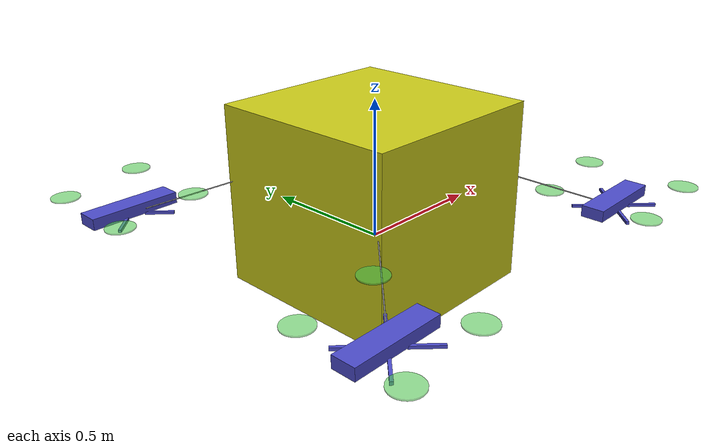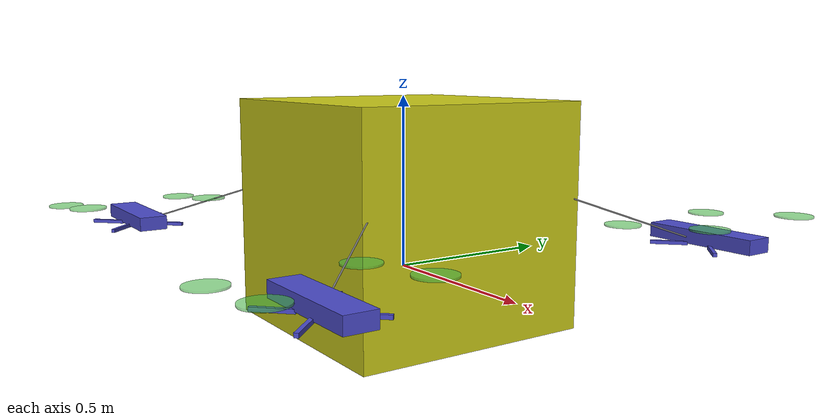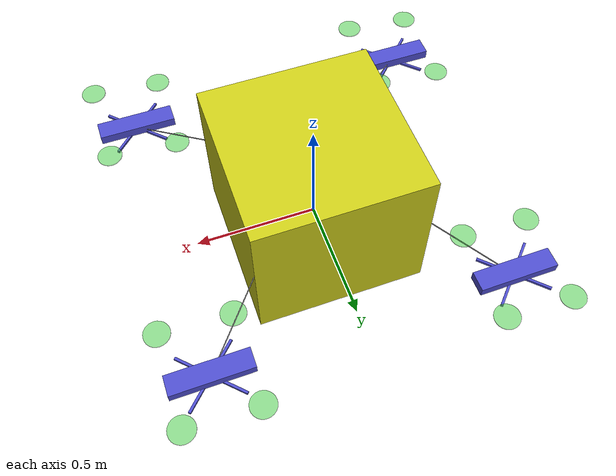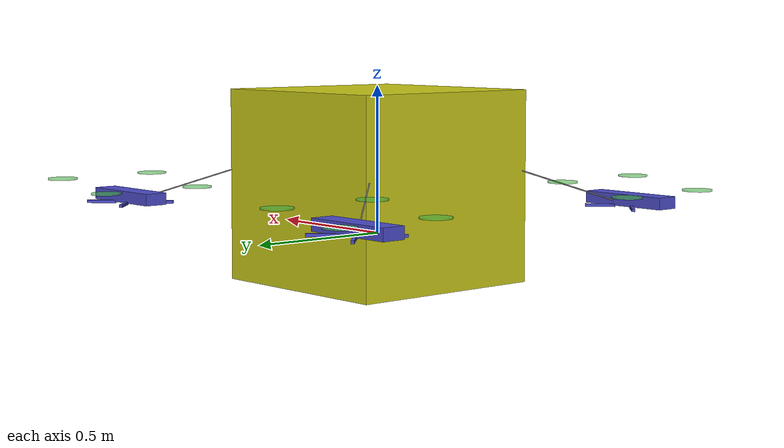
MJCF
<mujoco model="Skydio X2">
  <compiler autolimits="true" assetdir="assets"/>
  <option timestep="0.01" density="1.225" viscosity="1.8e-5"/>

  <default>
    <default class="x2">
      <geom mass="0"/>
      <motor ctrlrange="0 13"/>
      <mesh scale="0.01 0.01 0.01"/>
      <default class="visual">
        <geom group="2" type="mesh" contype="0" conaffinity="0"/>
      </default>
      <default class="collision">
        <geom group="3" type="box"/>
        <default class="rotor">
          <geom type="ellipsoid" size=".13 .13 .01"/>
        </default>
      </default>
      <site group="5"/>
    </default>
  </default>

  <worldbody>

    <body name="x2_0" pos="0.6 0.6 0.1" childclass="x2">
      <freejoint/>
      <camera name="track_0" pos="-1 0 .5" xyaxes="0 -1 0 1 0 2" mode="trackcom"/>
      <site name="imu_0" pos="0 0 .02"/>
      <geom name="core_geom_0" type="box" pos="0 0 0.02" quat="1 0 0 0" size=".16 .04 .02" rgba=".3 .3 .8 1" mass=".325"/>
      <geom name="arm_front_left_0" type="box" pos=".07 .07 0" size=".05 .005 .005" quat=".924 0 0 .383" rgba=".3 .3 .8 1"/>
      <geom name="arm_front_right_0" type="box" pos=".07 -.07 0" size=".05 .005 .005" quat=".383 0 0 .924" rgba=".3 .3 .8 1"/>
      <geom name="arm_back_right_0" type="box" pos="-.07 -.07 0" size=".05 .005 .005" quat="-.383 0 0 .924" rgba=".3 .3 .8 1"/>
      <geom name="arm_back_left_0" type="box" pos="-.07 .07 0" size=".05 .005 .005" quat=".924 0 0 -.383" rgba=".3 .3 .8 1"/>
      <site name="thrust1_0" type="cylinder" pos="-.14 -.18 .05"/>
      <site name="thrust2_0" type="cylinder" pos="-.14 .18 .05"/>
      <site name="thrust3_0" type="cylinder" pos=".14 .18 .08"/>
      <site name="thrust4_0" type="cylinder" pos=".14 -.18 .08"/>
      <geom name="thruster_front_left_0" type="cylinder" pos="-.14 -.18 .05" size=".05 .0025" quat="1 0 0 0" rgba=".3 .8 .3 0.6" mass=".25"/>
      <geom name="thruster_front_right_0" type="cylinder" pos="-.14 .18 .05" size=".05 .0025" quat="1 0 0 0" rgba=".3 .8 .3 0.6" mass=".25"/>
      <geom name="thruster_back_right_0" type="cylinder" pos=".14 .18 .08" size=".05 .0025" quat="1 0 0 0" rgba=".3 .8 .3 0.6" mass=".25"/>
      <geom name="thruster_back_left_0" type="cylinder" pos=".14 -.18 .08" size=".05 .0025" quat="1 0 0 0" rgba=".3 .8 .3 0.6" mass=".25"/>
      <site name="s0" pos="0 0 0" />
    </body>

    <body name="x2_1" pos="0.6 -0.6 0.1" childclass="x2">
     <freejoint/>
      <camera name="track_1" pos="-1 0 .5" xyaxes="0 -1 0 1 0 2" mode="trackcom"/>
      <site name="imu_1" pos="0 0 .02"/>
      <geom name="core_geom_1" type="box" pos="0 0 0.02" quat="1 0 0 0" size=".16 .04 .02" rgba=".3 .3 .8 1" mass=".325"/>
      <geom name="arm_front_left_1" type="box" pos=".07 .07 0" size=".05 .005 .005" quat=".924 0 0 .383" rgba=".3 .3 .8 1"/>
      <geom name="arm_front_right_1" type="box" pos=".07 -.07 0" size=".05 .005 .005" quat=".383 0 0 .924" rgba=".3 .3 .8 1"/>
      <geom name="arm_back_right_1" type="box" pos="-.07 -.07 0" size=".05 .005 .005" quat="-.383 0 0 .924" rgba=".3 .3 .8 1"/>
      <geom name="arm_back_left_1" type="box" pos="-.07 .07 0" size=".05 .005 .005" quat=".924 0 0 -.383" rgba=".3 .3 .8 1"/>
      <site name="thrust1_1" type="cylinder" pos="-.14 -.18 .05"/>
      <site name="thrust2_1" type="cylinder" pos="-.14 .18 .05"/>
      <site name="thrust3_1" type="cylinder" pos=".14 .18 .08"/>
      <site name="thrust4_1" type="cylinder" pos=".14 -.18 .08"/>
      <geom name="thruster_front_left_1" type="cylinder" pos="-.14 -.18 .05" size=".05 .0025" quat="1 0 0 0" rgba=".3 .8 .3 0.6" mass=".25"/>
      <geom name="thruster_front_right_1" type="cylinder" pos="-.14 .18 .05" size=".05 .0025" quat="1 0 0 0" rgba=".3 .8 .3 0.6" mass=".25"/>
      <geom name="thruster_back_right_1" type="cylinder" pos=".14 .18 .08" size=".05 .0025" quat="1 0 0 0" rgba=".3 .8 .3 0.6" mass=".25"/>
      <geom name="thruster_back_left_1" type="cylinder" pos=".14 -.18 .08" size=".05 .0025" quat="1 0 0 0" rgba=".3 .8 .3 0.6" mass=".25"/>
      <site name="s1" pos="0 0 0" />
    </body>

    <body name="x2_2" pos="-0.6 0.6 0.1" childclass="x2">
     <freejoint/>
      <camera name="track_2" pos="-1 0 .5" xyaxes="0 -1 0 1 0 2" mode="trackcom"/>
      <site name="imu_2" pos="0 0 .02"/>
      <geom name="core_geom_2" type="box" pos="0 0 0.02" quat="1 0 0 0" size=".16 .04 .02" rgba=".3 .3 .8 1" mass=".325"/>
      <geom name="arm_front_left_2" type="box" pos=".07 .07 0" size=".05 .005 .005" quat=".924 0 0 .383" rgba=".3 .3 .8 1"/>
      <geom name="arm_front_right_2" type="box" pos=".07 -.07 0" size=".05 .005 .005" quat=".383 0 0 .924" rgba=".3 .3 .8 1"/>
      <geom name="arm_back_right_2" type="box" pos="-.07 -.07 0" size=".05 .005 .005" quat="-.383 0 0 .924" rgba=".3 .3 .8 1"/>
      <geom name="arm_back_left_2" type="box" pos="-.07 .07 0" size=".05 .005 .005" quat=".924 0 0 -.383" rgba=".3 .3 .8 1"/>
      <site name="thrust1_2" type="cylinder" pos="-.14 -.18 .05"/>
      <site name="thrust2_2" type="cylinder" pos="-.14 .18 .05"/>
      <site name="thrust3_2" type="cylinder" pos=".14 .18 .08"/>
      <site name="thrust4_2" type="cylinder" pos=".14 -.18 .08"/>
      <geom name="thruster_front_left_2" type="cylinder" pos="-.14 -.18 .05" size=".05 .0025" quat="1 0 0 0" rgba=".3 .8 .3 0.6" mass=".25"/>
      <geom name="thruster_front_right_2" type="cylinder" pos="-.14 .18 .05" size=".05 .0025" quat="1 0 0 0" rgba=".3 .8 .3 0.6" mass=".25"/>
      <geom name="thruster_back_right_2" type="cylinder" pos=".14 .18 .08" size=".05 .0025" quat="1 0 0 0" rgba=".3 .8 .3 0.6" mass=".25"/>
      <geom name="thruster_back_left_2" type="cylinder" pos=".14 -.18 .08" size=".05 .0025" quat="1 0 0 0" rgba=".3 .8 .3 0.6" mass=".25"/>
      <site name="s2" pos="0 0 0" />
    </body>

    <body name="x2_3" pos="-0.6 -0.6 0.1" childclass="x2">
     <freejoint/>
      <camera name="track_3" pos="-1 0 .5" xyaxes="0 -1 0 1 0 2" mode="trackcom"/>
      <site name="imu_3" pos="0 0 .02"/>
      <geom name="core_geom_3" type="box" pos="0 0 0.02" quat="1 0 0 0" size=".16 .04 .02" rgba=".3 .3 .8 1" mass=".325"/>
      <geom name="arm_front_left_3" type="box" pos=".07 .07 0" size=".05 .005 .005" quat=".924 0 0 .383" rgba=".3 .3 .8 1"/>
      <geom name="arm_front_right_3" type="box" pos=".07 -.07 0" size=".05 .005 .005" quat=".383 0 0 .924" rgba=".3 .3 .8 1"/>
      <geom name="arm_back_right_3" type="box" pos="-.07 -.07 0" size=".05 .005 .005" quat="-.383 0 0 .924" rgba=".3 .3 .8 1"/>
      <geom name="arm_back_left_3" type="box" pos="-.07 .07 0" size=".05 .005 .005" quat=".924 0 0 -.383" rgba=".3 .3 .8 1"/>
      <site name="thrust1_3" type="cylinder" pos="-.14 -.18 .05"/>
      <site name="thrust2_3" type="cylinder" pos="-.14 .18 .05"/>
      <site name="thrust3_3" type="cylinder" pos=".14 .18 .08"/>
      <site name="thrust4_3" type="cylinder" pos=".14 -.18 .08"/>
      <geom name="thruster_front_left_3" type="cylinder" pos="-.14 -.18 .05" size=".05 .0025" quat="1 0 0 0" rgba=".3 .8 .3 0.6" mass=".25"/>
      <geom name="thruster_front_right_3" type="cylinder" pos="-.14 .18 .05" size=".05 .0025" quat="1 0 0 0" rgba=".3 .8 .3 0.6" mass=".25"/>
      <geom name="thruster_back_right_3" type="cylinder" pos=".14 .18 .08" size=".05 .0025" quat="1 0 0 0" rgba=".3 .8 .3 0.6" mass=".25"/>
      <geom name="thruster_back_left_3" type="cylinder" pos=".14 -.18 .08" size=".05 .0025" quat="1 0 0 0" rgba=".3 .8 .3 0.6" mass=".25"/>
      <site name="s3" pos="0 0 0" />
    </body>

   <body name="load" pos="0 0 0.1625">
      <freejoint/>
      <geom name="load" pos="0 0 0" rgba="0.8 0.8 0.1 1" size="0.3525 0.3525 0.325" type="box" mass="0.25"/>
      <site name="load_3" pos="-0.115 -0.09 0.1625" />
      <site name="load_1" pos="0.115 -0.09 0.1625" />
      <site name="load_0" pos="0.115 0.09 0.1625" />
      <site name="load_2" pos="-0.115 0.09 0.1625" />
      </body>

  </worldbody>

   <tendon>
        <spatial name="rope0" width="0.002"  range="0.0 2.1" limited="true">
            <site site="load_0" />
            <site site="s0" />
        </spatial>
    </tendon>
     <tendon>
        <spatial name="rope1" width="0.002"  range="0.0 2.1" limited="true">
            <site site="load_1" />
            <site site="s1" />
        </spatial>
    </tendon>
     <tendon>
        <spatial name="rope2" width="0.002"  range="0.0 2.1" limited="true">
            <site site="load_2" />
            <site site="s2" />
        </spatial>
    </tendon>
     <tendon>
        <spatial name="rope3" width="0.002"  range="0.0 2.1" limited="true">
            <site site="load_3" />
            <site site="s3" />
        </spatial>
    </tendon>

  <actuator>
    <motor class="x2" name="thrust1_0" site="thrust1_0" gear="0 0 1 0 0 .0201"/>
    <motor class="x2" name="thrust2_0" site="thrust2_0" gear="0 0 1 0 0 -.0201"/>
    <motor class="x2" name="thrust3_0" site="thrust3_0" gear="0 0 1 0 0 .0201"/>
    <motor class="x2" name="thrust4_0" site="thrust4_0" gear="0 0 1 0 0 -.0201"/>

    <motor class="x2" name="thrust1_1" site="thrust1_1" gear="0 0 1 0 0 .0201"/>
    <motor class="x2" name="thrust2_1" site="thrust2_1" gear="0 0 1 0 0 -.0201"/>
    <motor class="x2" name="thrust3_1" site="thrust3_1" gear="0 0 1 0 0 .0201"/>
    <motor class="x2" name="thrust4_1" site="thrust4_1" gear="0 0 1 0 0 -.0201"/>

    <motor class="x2" name="thrust1_2" site="thrust1_2" gear="0 0 1 0 0 .0201"/>
    <motor class="x2" name="thrust2_2" site="thrust2_2" gear="0 0 1 0 0 -.0201"/>
    <motor class="x2" name="thrust3_2" site="thrust3_2" gear="0 0 1 0 0 .0201"/>
    <motor class="x2" name="thrust4_2" site="thrust4_2" gear="0 0 1 0 0 -.0201"/>

    <motor class="x2" name="thrust1_3" site="thrust1_3" gear="0 0 1 0 0 .0201"/>
    <motor class="x2" name="thrust2_3" site="thrust2_3" gear="0 0 1 0 0 -.0201"/>
    <motor class="x2" name="thrust3_3" site="thrust3_3" gear="0 0 1 0 0 .0201"/>
    <motor class="x2" name="thrust4_3" site="thrust4_3" gear="0 0 1 0 0 -.0201"/>
  </actuator>

  <sensor>
    <gyro name="body_gyro_0" site="imu_0"/>
    <accelerometer name="body_linacc_0" site="imu_0"/>
    <framequat name="body_quat_0" objtype="site" objname="imu_0"/>

    <gyro name="body_gyro_1" site="imu_1"/>
    <accelerometer name="body_linacc_1" site="imu_1"/>
    <framequat name="body_quat_1" objtype="site" objname="imu_1"/>

    <gyro name="body_gyro_2" site="imu_2"/>
    <accelerometer name="body_linacc_2" site="imu_2"/>
    <framequat name="body_quat_2" objtype="site" objname="imu_2"/>

    <gyro name="body_gyro_3" site="imu_3"/>
    <accelerometer name="body_linacc_3" site="imu_3"/>
    <framequat name="body_quat_3" objtype="site" objname="imu_3"/>
  </sensor>

</mujoco>
